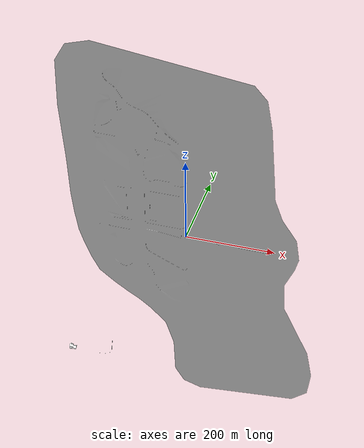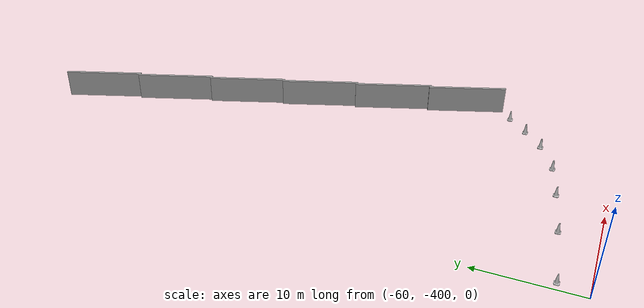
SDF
<sdf version="1.5">
 <world name="default">
  <spherical_coordinates>
   <latitude_deg>48.878922</latitude_deg>
   <longitude_deg>2.367782</longitude_deg>
  </spherical_coordinates>
  <physics type="ode">
   <real_time_update_rate>1000</real_time_update_rate>
   <max_step_size>0.001</max_step_size>
   <real_time_factor>1.0</real_time_factor>
   <max_contacts>20</max_contacts>
   <gravity>0 0 -9.81</gravity>
   <magnetic_field>0.1062e-6 20.8038e-6 -43.2881e-6</magnetic_field>
   <ode>
    <solver>
     <type>world</type>
     <min_step_size>0.0001</min_step_size>
     <iters>50</iters>
     <precon_iters>0</precon_iters>
     <sor>1.4</sor>
     <use_dynamic_moi_rescaling>1</use_dynamic_moi_rescaling>
    </solver>
    <constraints>
     <cfm>0</cfm>
     <erp>0.2</erp>
     <contact_max_correcting_vel>100.0</contact_max_correcting_vel>
     <contact_surface_layer>0.001</contact_surface_layer>
    </constraints>
   </ode>
  </physics>
  <atmosphere type="adiabatic">
   <temperature>298.15</temperature>
   <pressure>101325</pressure>
   <temperature_gradient>-0.0065</temperature_gradient>
  </atmosphere>
  <plugin name="fwman" filename="libsphinx_fwman.so">
   <spawn_point name="default"><pose>-11.7 -5.2 5.2 0 0 0</pose></spawn_point>
   <spawn_point name="bridge_top"><pose>-11.7 -1.2 5.2 0 0 0</pose></spawn_point>
   <spawn_point name="under_the_bridge"><pose>-11.7 -1.2 0.2 0 0 0</pose></spawn_point>
   <spawn_point name="gas_station"><pose>4.3 -274 0.2 0 0 -1.57</pose></spawn_point>
  </plugin>
  <plugin name="wind" filename="libsphinx_wind.so">
   <magnitude_mean>0.0</magnitude_mean>
   <direction_mean>0.0</direction_mean>
   <elevation_mean>0.0</elevation_mean>
   <magnitude_time_for_rise>10.0</magnitude_time_for_rise>
   <direction_time_for_rise>30.0</direction_time_for_rise>
   <elevation_time_for_rise>0.0</elevation_time_for_rise>
   <magnitude_expr>val*(1+0.05*sin(2*pi*time/15))</magnitude_expr>
   <direction_expr>360*time/60</direction_expr>
   <elevation_expr>0.03*noise()</elevation_expr>
  </plugin>
  <include>
   <uri>model://mcity</uri>
   <name>mcity</name>
   <static>true</static>
   <pose>-20 0 0 -1.5707963267948966 0 0</pose>
  </include>
  <include>
   <uri>model://grey_wall</uri>
   <name>Grey Wall 1</name>
   <static>true</static>
   <pose>-49 -350 0 0 0 1.87601</pose>
  </include>
  <include>
   <uri>model://grey_wall</uri>
   <name>Grey Wall 2</name>
   <static>true</static>
   <pose>-47 -357 0 0 0 1.87601</pose>
  </include>
  <include>
   <uri>model://grey_wall</uri>
   <name>Grey Wall 3</name>
   <static>true</static>
   <pose>-45 -364 0 0 0 1.87601</pose>
  </include>
  <include>
   <uri>model://grey_wall</uri>
   <name>Grey Wall 4</name>
   <static>true</static>
   <pose>-43 -371 0 0 0 1.87601</pose>
  </include>
  <include>
   <uri>model://grey_wall</uri>
   <name>Grey Wall 5</name>
   <static>true</static>
   <pose>-41 -378 0 0 0 1.87601</pose>
  </include>
  <include>
   <uri>model://grey_wall</uri>
   <name>Grey Wall 6</name>
   <static>true</static>
   <pose>-39 -385 0 0 0 1.87601</pose>
  </include>
  <include>
   <uri>model://house_3</uri>
   <name>House 3</name>
   <static>true</static>
   <pose>-114.9389 -397.723 0 0 0 0.112475</pose>
  </include>
  <include>
   <uri>model://construction_cone</uri>
   <name>Construction Cone 1</name>
   <pose>-39 -389.557 0 0 0 0</pose>
  </include>
  <include>
   <uri>model://construction_cone</uri>
   <name>Construction Cone 2</name>
   <pose>-40.5705 -391.331 0 0 0 0</pose>
  </include>
  <include>
   <uri>model://construction_cone</uri>
   <name>Construction Cone 3</name>
   <pose>-42.3249 -393.096 0 0 0 0</pose>
  </include>
  <include>
   <uri>model://construction_cone</uri>
   <name>Construction Cone 4</name>
   <pose>-45.1263 -394.655 0 0 0 0</pose>
  </include>
  <include>
   <uri>model://construction_cone</uri>
   <name>Construction Cone 5</name>
   <pose>-48.6583 -395.535 0 0 0 0</pose>
  </include>
  <include>
   <uri>model://construction_cone</uri>
   <name>Construction Cone 6</name>
   <pose>-53.3133 -396.401 0 0 0 0</pose>
  </include>
  <include>
   <uri>model://construction_cone</uri>
   <name>Construction Cone 7</name>
   <pose>-59.2634 -397.191 0 0 0 0</pose>
  </include>
  <scene>
   <ambient>0.4 0.4 0.4 1</ambient>
   <background>0.7 0.7 0.7 1</background>
   <sky><clouds><speed>12</speed></clouds></sky>
  </scene>
  <light name="sun" type="directional">
   <pose>0.5 0 1 0 0 0</pose>
   <diffuse>0.8 0.8 0.8 1</diffuse>
   <specular>0.2 0.2 0.2 1</specular>
   <attenuation>
    <range>1000</range>
    <constant>0.9</constant>
    <linear>0.01</linear>
    <quadratic>0.001</quadratic>
   </attenuation>
   <direction>-0.5 0.1 -0.9</direction>
  </light>
 </world>
</sdf>

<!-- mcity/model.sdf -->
<sdf version="1.6">
  <model name="mcity">
    <static>true</static>
    <link name="link">
      <collision name="collision">
        <geometry>
          <mesh>
            <scale>0.254 0.254 0.254</scale>
            <uri>model://mcity/meshes/mcity.obj</uri>
          </mesh>
        </geometry>
      </collision>

      <visual name="visual">
        <geometry>
          <mesh>
            <scale>0.254 0.254 0.254</scale>
            <uri>model://mcity/meshes/mcity.obj</uri>
          </mesh>
        </geometry>
      </visual>
    </link>
  </model>
</sdf>

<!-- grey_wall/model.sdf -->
<sdf version="1.5">
  <model name="grey_wall">
    <static>true</static>
    <link name="link">
      <pose>0 0 1.4 0 0 0</pose>
      <collision name="collision">
        <geometry>
          <box>
            <size>7.5 0.2 2.8</size>
          </box>
        </geometry>
      </collision>
      <visual name="visual">
        <cast_shadows>false</cast_shadows>
        <geometry>
          <box>
            <size>7.5 0.2 2.8</size>
          </box>
        </geometry>
        <material>
          <script>
            <uri>model://../model_source/models/grey_wall/materials/scripts</uri>
            <uri>model://../model_source/models/grey_wall/materials/textures</uri>
            <name>vrc/grey_wall</name>
          </script>
        </material>
      </visual>
    </link>
  </model>
</sdf>

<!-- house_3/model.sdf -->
<sdf version="1.5">
  <model name="House 3">
    <static>true</static>
    <link name="link">
      <collision name="collision">
        <geometry>
          <mesh>
            <uri>model://house_3/meshes/house_3.dae</uri>
            <scale>1.5 1.5 1.5</scale>
          </mesh>
        </geometry>
      </collision>
      <visual name="visual">
        <geometry>
          <mesh>
            <uri>model://house_3/meshes/house_3.dae</uri>
            <scale>1.5 1.5 1.5</scale>
          </mesh>
        </geometry>
        <material>
          <diffuse>1.0 1.0 1.0 1.0</diffuse>
          <specular>0.0 0.0 0.0 1.0</specular>
          <pbr>
            <metal>
              <albedo_map>model://house_3/materials/textures/house_3.png</albedo_map>
            </metal>
          </pbr>
        </material>
      </visual>
    </link>
  </model>
</sdf>

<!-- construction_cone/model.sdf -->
<sdf version="1.5">
  <model name="Construction Cone">
    <link name="link">
      <collision name="collision">
        <geometry>
          <mesh>
            <scale>10 10 10</scale>
            <uri>file://isr-testbed/construction_cone/meshes/construction_cone.dae</uri>
          </mesh>
        </geometry>
      </collision>
      <visual name="visual">
        <geometry>
          <mesh>
            <scale>10 10 10</scale>
            <uri>file://isr-testbed/construction_cone/meshes/construction_cone.dae</uri>
          </mesh>
        </geometry>
      </visual>
    </link>
  </model>
</sdf>
